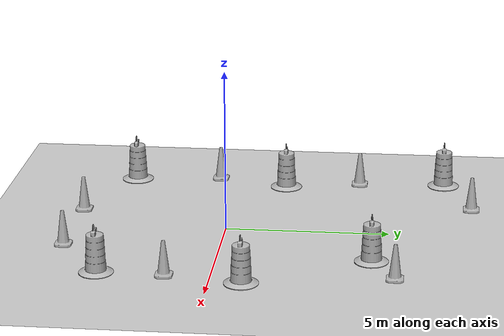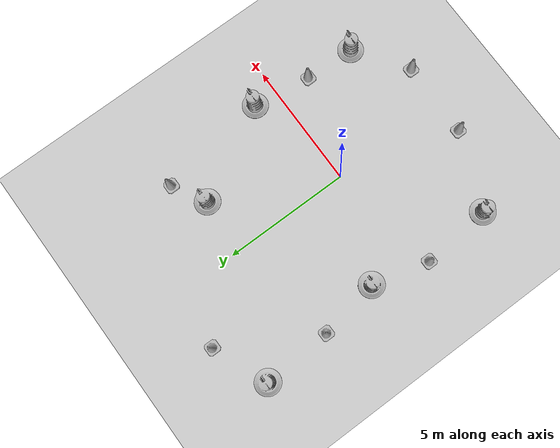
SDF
<sdf version="1.7">
 <world name="default">
  <light name="sun" type="directional">
   <pose>0 0 10 0 -0 0</pose>
   <diffuse>0.8 0.8 0.8 1</diffuse>
   <specular>0.2 0.2 0.2 1</specular>
   <attenuation>
    <range>1000</range>
    <constant>0.9</constant>
    <linear>0.01</linear>
    <quadratic>0.001</quadratic>
   </attenuation>
   <direction>-0.5 0.1 -0.9</direction>
   <spot><inner_angle>0</inner_angle><outer_angle>0</outer_angle><falloff>0</falloff></spot>
  </light>
  <model name="ground_plane">
   <static>1</static>
   <link name="link">
    <collision name="collision">
     <geometry><plane><normal>0 0 1</normal><size>100 100</size></plane></geometry>
     <surface>
      <contact><collide_bitmask>65535</collide_bitmask></contact>
      <friction><ode><mu>100</mu><mu2>50</mu2></ode></friction>
     </surface>
    </collision>
    <visual name="visual">
     <cast_shadows>0</cast_shadows>
     <geometry><plane><normal>0 0 1</normal><size>100 100</size></plane></geometry>
     <material>
      <script><uri>file://media/materials/scripts/gazebo.material</uri><name>Gazebo/Grey</name></script>
     </material>
    </visual>
   </link>
  </model>
  <gravity>0 0 -9.8</gravity>
  <magnetic_field>6e-06 2.3e-05 -4.2e-05</magnetic_field>
  <atmosphere type="adiabatic"/>
  <physics type="ode">
   <max_step_size>0.001</max_step_size>
   <real_time_factor>1</real_time_factor>
   <real_time_update_rate>1000</real_time_update_rate>
  </physics>
  <scene><ambient>0.4 0.4 0.4 1</ambient><background>0.7 0.7 0.7 1</background><shadows>1</shadows></scene>
  <spherical_coordinates>
   <surface_model>EARTH_WGS84</surface_model>
   <latitude_deg>0</latitude_deg>
   <longitude_deg>0</longitude_deg>
   <elevation>0</elevation>
   <heading_deg>0</heading_deg>
  </spherical_coordinates>
  <model name="Construction Cone">
   <link name="link">
    <collision name="collision">
     <geometry>
      <mesh><scale>10 10 10</scale><uri>model://construction_cone/meshes/construction_cone.dae</uri></mesh>
     </geometry>
    </collision>
    <visual name="visual">
     <geometry>
      <mesh><scale>10 10 10</scale><uri>model://construction_cone/meshes/construction_cone.dae</uri></mesh>
     </geometry>
    </visual>
    <inertial>
     <inertia><ixx>1</ixx><ixy>0</ixy><ixz>0</ixz><iyy>1</iyy><iyz>0</iyz><izz>1</izz></inertia>
     <mass>1</mass>
    </inertial>
   </link>
   <pose>3.50334 5.29045 -1e-06 0 4e-06 0</pose>
  </model>
  <model name="Construction Barrel">
   <link name="link">
    <inertial>
     <pose>0 0 0.4 0 -0 0</pose>
     <mass>500</mass>
     <inertia><ixx>51.2096</ixx><iyy>51.2096</iyy><izz>25</izz><ixy>0</ixy><ixz>0</ixz><iyz>0</iyz></inertia>
    </inertial>
    <collision name="collision">
     <geometry><mesh><uri>model://construction_barrel/meshes/construction_barrel.dae</uri></mesh></geometry>
    </collision>
    <visual name="visual">
     <geometry><mesh><uri>model://construction_barrel/meshes/construction_barrel.dae</uri></mesh></geometry>
    </visual>
   </link>
   <pose>2.20931 4.56358 -2e-06 -7e-06 -4e-06 -2.1e-05</pose>
  </model>
  <model name="Construction Barrel_clone">
   <link name="link">
    <inertial>
     <pose>0 0 0.4 0 -0 0</pose>
     <mass>500</mass>
     <inertia><ixx>51.2096</ixx><iyy>51.2096</iyy><izz>25</izz><ixy>0</ixy><ixz>0</ixz><iyz>0</iyz></inertia>
    </inertial>
    <collision name="collision">
     <geometry><mesh><uri>model://construction_barrel/meshes/construction_barrel.dae</uri></mesh></geometry>
    </collision>
    <visual name="visual">
     <geometry><mesh><uri>model://construction_barrel/meshes/construction_barrel.dae</uri></mesh></geometry>
    </visual>
   </link>
   <pose>4.17145 0.9472 -2e-06 -7e-06 -4e-06 -2.2e-05</pose>
  </model>
  <model name="Construction Barrel_clone_0">
   <link name="link">
    <inertial>
     <pose>0 0 0.4 0 -0 0</pose>
     <mass>500</mass>
     <inertia><ixx>51.2096</ixx><iyy>51.2096</iyy><izz>25</izz><ixy>0</ixy><ixz>0</ixz><iyz>0</iyz></inertia>
    </inertial>
    <collision name="collision">
     <geometry><mesh><uri>model://construction_barrel/meshes/construction_barrel.dae</uri></mesh></geometry>
    </collision>
    <visual name="visual">
     <geometry><mesh><uri>model://construction_barrel/meshes/construction_barrel.dae</uri></mesh></geometry>
    </visual>
   </link>
   <pose>-3.9304 1.51768 -1e-06 3e-06 -2e-06 -2.2e-05</pose>
  </model>
  <model name="Construction Barrel_clone_1">
   <link name="link">
    <inertial>
     <pose>0 0 0.4 0 -0 0</pose>
     <mass>500</mass>
     <inertia><ixx>51.2096</ixx><iyy>51.2096</iyy><izz>25</izz><ixy>0</ixy><ixz>0</ixz><iyz>0</iyz></inertia>
    </inertial>
    <collision name="collision">
     <geometry><mesh><uri>model://construction_barrel/meshes/construction_barrel.dae</uri></mesh></geometry>
    </collision>
    <visual name="visual">
     <geometry><mesh><uri>model://construction_barrel/meshes/construction_barrel.dae</uri></mesh></geometry>
    </visual>
   </link>
   <pose>-4.49172 6.62655 0 0 0 -1.5e-05</pose>
  </model>
  <model name="Construction Barrel_clone_2">
   <link name="link">
    <inertial>
     <pose>0 0 0.4 0 -0 0</pose>
     <mass>500</mass>
     <inertia><ixx>51.2096</ixx><iyy>51.2096</iyy><izz>25</izz><ixy>0</ixy><ixz>0</ixz><iyz>0</iyz></inertia>
    </inertial>
    <collision name="collision">
     <geometry><mesh><uri>model://construction_barrel/meshes/construction_barrel.dae</uri></mesh></geometry>
    </collision>
    <visual name="visual">
     <geometry><mesh><uri>model://construction_barrel/meshes/construction_barrel.dae</uri></mesh></geometry>
    </visual>
   </link>
   <pose>-4.24164 -3.44424 1e-06 3e-06 2e-06 -2.3e-05</pose>
  </model>
  <model name="Construction Barrel_clone_3">
   <link name="link">
    <inertial>
     <pose>0 0 0.4 0 -0 0</pose>
     <mass>500</mass>
     <inertia><ixx>51.2096</ixx><iyy>51.2096</iyy><izz>25</izz><ixy>0</ixy><ixz>0</ixz><iyz>0</iyz></inertia>
    </inertial>
    <collision name="collision">
     <geometry><mesh><uri>model://construction_barrel/meshes/construction_barrel.dae</uri></mesh></geometry>
    </collision>
    <visual name="visual">
     <geometry><mesh><uri>model://construction_barrel/meshes/construction_barrel.dae</uri></mesh></geometry>
    </visual>
   </link>
   <pose>3.78015 -3.30878 1e-06 3e-06 2e-06 -2.1e-05</pose>
  </model>
  <model name="Construction Cone_clone">
   <link name="link">
    <collision name="collision">
     <geometry>
      <mesh><scale>10 10 10</scale><uri>model://construction_cone/meshes/construction_cone.dae</uri></mesh>
     </geometry>
    </collision>
    <visual name="visual">
     <geometry>
      <mesh><scale>10 10 10</scale><uri>model://construction_cone/meshes/construction_cone.dae</uri></mesh>
     </geometry>
    </visual>
    <inertial>
     <inertia><ixx>1</ixx><ixy>0</ixy><ixz>0</ixz><iyy>1</iyy><iyz>0</iyz><izz>1</izz></inertia>
     <mass>1</mass>
    </inertial>
   </link>
   <pose>-4.50978 -0.703147 -0 0 -0 0</pose>
  </model>
  <model name="Construction Cone_clone_0">
   <link name="link">
    <collision name="collision">
     <geometry>
      <mesh><scale>10 10 10</scale><uri>model://construction_cone/meshes/construction_cone.dae</uri></mesh>
     </geometry>
    </collision>
    <visual name="visual">
     <geometry>
      <mesh><scale>10 10 10</scale><uri>model://construction_cone/meshes/construction_cone.dae</uri></mesh>
     </geometry>
    </visual>
    <inertial>
     <inertia><ixx>1</ixx><ixy>0</ixy><ixz>0</ixz><iyy>1</iyy><iyz>0</iyz><izz>1</izz></inertia>
     <mass>1</mass>
    </inertial>
   </link>
   <pose>3.83555 -1.32331 -0 0 -0 0</pose>
  </model>
  <model name="Construction Cone_clone_1">
   <link name="link">
    <collision name="collision">
     <geometry>
      <mesh><scale>10 10 10</scale><uri>model://construction_cone/meshes/construction_cone.dae</uri></mesh>
     </geometry>
    </collision>
    <visual name="visual">
     <geometry>
      <mesh><scale>10 10 10</scale><uri>model://construction_cone/meshes/construction_cone.dae</uri></mesh>
     </geometry>
    </visual>
    <inertial>
     <inertia><ixx>1</ixx><ixy>0</ixy><ixz>0</ixz><iyy>1</iyy><iyz>0</iyz><izz>1</izz></inertia>
     <mass>1</mass>
    </inertial>
   </link>
   <pose>-1.23908 -4.65228 -1e-06 2e-06 2e-06 0</pose>
  </model>
  <model name="Construction Cone_clone_2">
   <link name="link">
    <collision name="collision">
     <geometry>
      <mesh><scale>10 10 10</scale><uri>model://construction_cone/meshes/construction_cone.dae</uri></mesh>
     </geometry>
    </collision>
    <visual name="visual">
     <geometry>
      <mesh><scale>10 10 10</scale><uri>model://construction_cone/meshes/construction_cone.dae</uri></mesh>
     </geometry>
    </visual>
    <inertial>
     <inertia><ixx>1</ixx><ixy>0</ixy><ixz>0</ixz><iyy>1</iyy><iyz>0</iyz><izz>1</izz></inertia>
     <mass>1</mass>
    </inertial>
   </link>
   <pose>1.74688 -4.69431 -0 0 -0 0</pose>
  </model>
  <model name="Construction Cone_clone_3">
   <link name="link">
    <collision name="collision">
     <geometry>
      <mesh><scale>10 10 10</scale><uri>model://construction_cone/meshes/construction_cone.dae</uri></mesh>
     </geometry>
    </collision>
    <visual name="visual">
     <geometry>
      <mesh><scale>10 10 10</scale><uri>model://construction_cone/meshes/construction_cone.dae</uri></mesh>
     </geometry>
    </visual>
    <inertial>
     <inertia><ixx>1</ixx><ixy>0</ixy><ixz>0</ixz><iyy>1</iyy><iyz>0</iyz><izz>1</izz></inertia>
     <mass>1</mass>
    </inertial>
   </link>
   <pose>-4.34833 3.8992 -0 0 -0 0</pose>
  </model>
  <model name="Construction Cone_clone_4">
   <link name="link">
    <collision name="collision">
     <geometry>
      <mesh><scale>10 10 10</scale><uri>model://construction_cone/meshes/construction_cone.dae</uri></mesh>
     </geometry>
    </collision>
    <visual name="visual">
     <geometry>
      <mesh><scale>10 10 10</scale><uri>model://construction_cone/meshes/construction_cone.dae</uri></mesh>
     </geometry>
    </visual>
    <inertial>
     <inertia><ixx>1</ixx><ixy>0</ixy><ixz>0</ixz><iyy>1</iyy><iyz>0</iyz><izz>1</izz></inertia>
     <mass>1</mass>
    </inertial>
   </link>
   <pose>-2.30108 7.51598 -0 0 -1e-06 0</pose>
  </model>
 </world>
</sdf>
